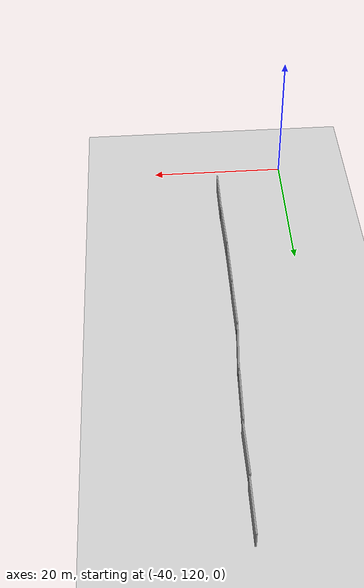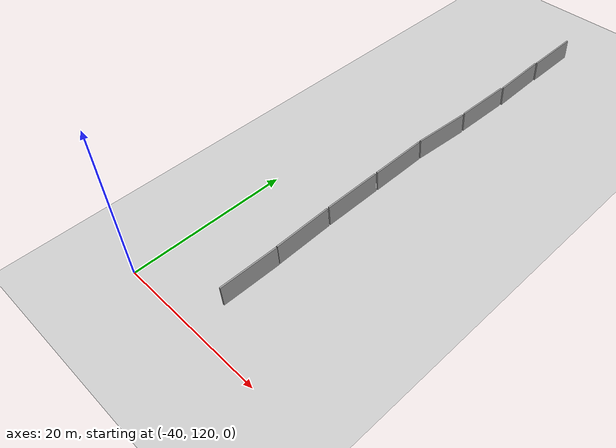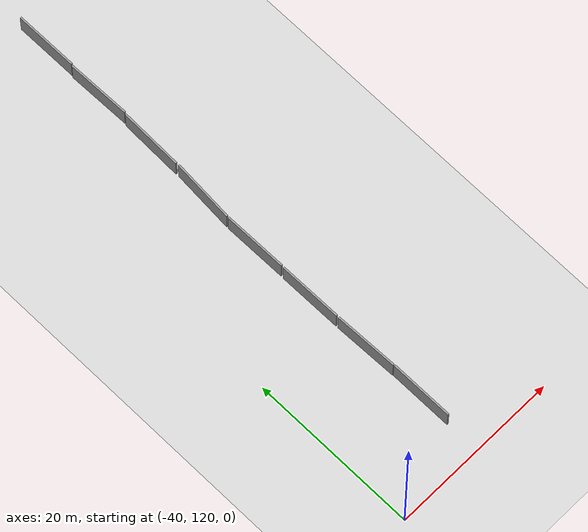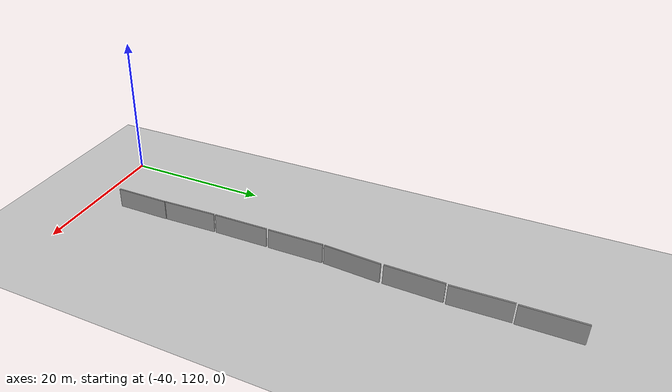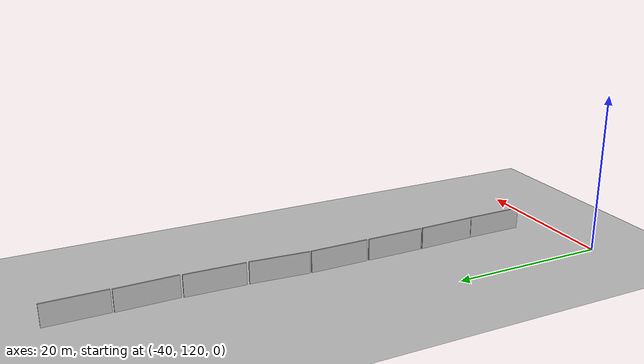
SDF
<sdf version="1.4">
 <world name="default">
  <model name="ground_plane">
   <static>1</static>
   <link name="link">
    <collision name="collision">
     <geometry><plane><normal>0 0 1</normal><size>100 100</size></plane></geometry>
     <surface><friction><ode><mu>100</mu><mu2>50</mu2></ode></friction></surface>
    </collision>
    <visual name="visual">
     <cast_shadows>0</cast_shadows>
     <geometry><plane><normal>0 0 1</normal><size>100 100</size></plane></geometry>
     <material>
      <script><uri>file://media/materials/scripts/gazebo.material</uri><name>Gazebo/Grey</name></script>
     </material>
    </visual>
    <velocity_decay><linear>0</linear><angular>0</angular></velocity_decay>
   </link>
  </model>
  <model name="grey_wall_17">
   <static>1</static>
   <link name="link">
    <pose>0 0 1.4 0 -0 0</pose>
    <collision name="collision"><geometry><box><size>7.5 0.2 2.8</size></box></geometry></collision>
    <visual name="visual">
     <cast_shadows>0</cast_shadows>
     <geometry><box><size>7.5 0.2 2.8</size></box></geometry>
     <material>
      <script>
       <uri>model://grey_wall/materials/scripts</uri>
       <uri>model://grey_wall/materials/textures</uri>
       <name>vrc/grey_wall</name>
      </script>
     </material>
    </visual>
    <velocity_decay><linear>0</linear><angular>0</angular></velocity_decay>
   </link>
   <pose>-29.7776 158.602 0 0 0 -1.64072</pose>
  </model>
  <model name="grey_wall_21">
   <static>1</static>
   <link name="link">
    <pose>0 0 1.4 0 -0 0</pose>
    <collision name="collision"><geometry><box><size>7.5 0.2 2.8</size></box></geometry></collision>
    <visual name="visual">
     <cast_shadows>0</cast_shadows>
     <geometry><box><size>7.5 0.2 2.8</size></box></geometry>
     <material>
      <script>
       <uri>model://grey_wall/materials/scripts</uri>
       <uri>model://grey_wall/materials/textures</uri>
       <name>vrc/grey_wall</name>
      </script>
     </material>
    </visual>
    <velocity_decay><linear>0</linear><angular>0</angular></velocity_decay>
   </link>
   <pose>-29.3033 181.863 0 0 0 -1.56661</pose>
  </model>
  <model name="grey_wall_22">
   <static>1</static>
   <link name="link">
    <pose>0 0 1.4 0 -0 0</pose>
    <collision name="collision"><geometry><box><size>7.5 0.2 2.8</size></box></geometry></collision>
    <visual name="visual">
     <cast_shadows>0</cast_shadows>
     <geometry><box><size>7.5 0.2 2.8</size></box></geometry>
     <material>
      <script>
       <uri>model://grey_wall/materials/scripts</uri>
       <uri>model://grey_wall/materials/textures</uri>
       <name>vrc/grey_wall</name>
      </script>
     </material>
    </visual>
    <velocity_decay><linear>0</linear><angular>0</angular></velocity_decay>
   </link>
   <pose>-29.3139 174.168 0 0 0 -1.5502</pose>
  </model>
  <model name="grey_wall_23">
   <static>1</static>
   <link name="link">
    <pose>0 0 1.4 0 -0 0</pose>
    <collision name="collision"><geometry><box><size>7.5 0.2 2.8</size></box></geometry></collision>
    <visual name="visual">
     <cast_shadows>0</cast_shadows>
     <geometry><box><size>7.5 0.2 2.8</size></box></geometry>
     <material>
      <script>
       <uri>model://grey_wall/materials/scripts</uri>
       <uri>model://grey_wall/materials/textures</uri>
       <name>vrc/grey_wall</name>
      </script>
     </material>
    </visual>
    <velocity_decay><linear>0</linear><angular>0</angular></velocity_decay>
   </link>
   <pose>-29.4527 166.419 0 0 0 -1.59655</pose>
  </model>
  <model name="grey_wall_24">
   <static>1</static>
   <link name="link">
    <pose>0 0 1.4 0 -0 0</pose>
    <collision name="collision"><geometry><box><size>7.5 0.2 2.8</size></box></geometry></collision>
    <visual name="visual">
     <cast_shadows>0</cast_shadows>
     <geometry><box><size>7.5 0.2 2.8</size></box></geometry>
     <material>
      <script>
       <uri>model://grey_wall/materials/scripts</uri>
       <uri>model://grey_wall/materials/textures</uri>
       <name>vrc/grey_wall</name>
      </script>
     </material>
    </visual>
    <velocity_decay><linear>0</linear><angular>0</angular></velocity_decay>
   </link>
   <pose>-30.0088 150.9 0 0 0 -1.56181</pose>
  </model>
  <model name="grey_wall_25">
   <static>1</static>
   <link name="link">
    <pose>0 0 1.4 0 -0 0</pose>
    <collision name="collision"><geometry><box><size>7.5 0.2 2.8</size></box></geometry></collision>
    <visual name="visual">
     <cast_shadows>0</cast_shadows>
     <geometry><box><size>7.5 0.2 2.8</size></box></geometry>
     <material>
      <script>
       <uri>model://grey_wall/materials/scripts</uri>
       <uri>model://grey_wall/materials/textures</uri>
       <name>vrc/grey_wall</name>
      </script>
     </material>
    </visual>
    <velocity_decay><linear>0</linear><angular>0</angular></velocity_decay>
   </link>
   <pose>-29.9713 143.125 0 0 0 -1.56389</pose>
  </model>
  <model name="grey_wall_26">
   <static>1</static>
   <link name="link">
    <pose>0 0 1.4 0 -0 0</pose>
    <collision name="collision"><geometry><box><size>7.5 0.2 2.8</size></box></geometry></collision>
    <visual name="visual">
     <cast_shadows>0</cast_shadows>
     <geometry><box><size>7.5 0.2 2.8</size></box></geometry>
     <material>
      <script>
       <uri>model://grey_wall/materials/scripts</uri>
       <uri>model://grey_wall/materials/textures</uri>
       <name>vrc/grey_wall</name>
      </script>
     </material>
    </visual>
    <velocity_decay><linear>0</linear><angular>0</angular></velocity_decay>
   </link>
   <pose>-29.8348 135.39 0 0 0 -1.54202</pose>
  </model>
  <model name="grey_wall_27">
   <static>1</static>
   <link name="link">
    <pose>0 0 1.4 0 -0 0</pose>
    <collision name="collision"><geometry><box><size>7.5 0.2 2.8</size></box></geometry></collision>
    <visual name="visual">
     <cast_shadows>0</cast_shadows>
     <geometry><box><size>7.5 0.2 2.8</size></box></geometry>
     <material>
      <script>
       <uri>model://grey_wall/materials/scripts</uri>
       <uri>model://grey_wall/materials/textures</uri>
       <name>vrc/grey_wall</name>
      </script>
     </material>
    </visual>
    <velocity_decay><linear>0</linear><angular>0</angular></velocity_decay>
   </link>
   <pose>-29.6885 127.817 0 0 0 -1.56994</pose>
  </model>
 </world>
</sdf>
